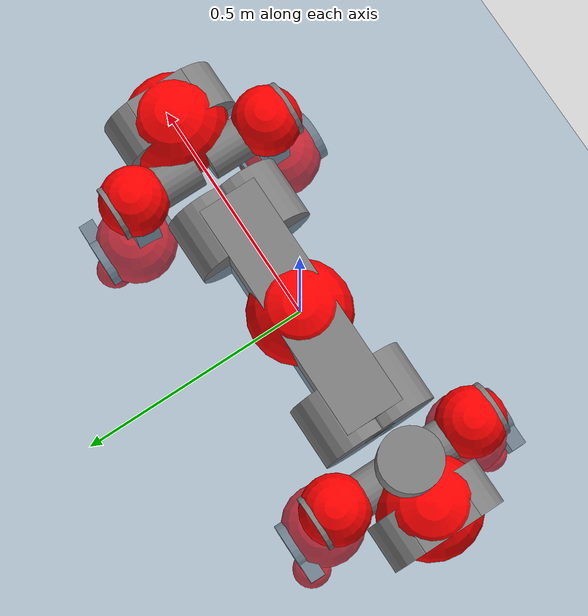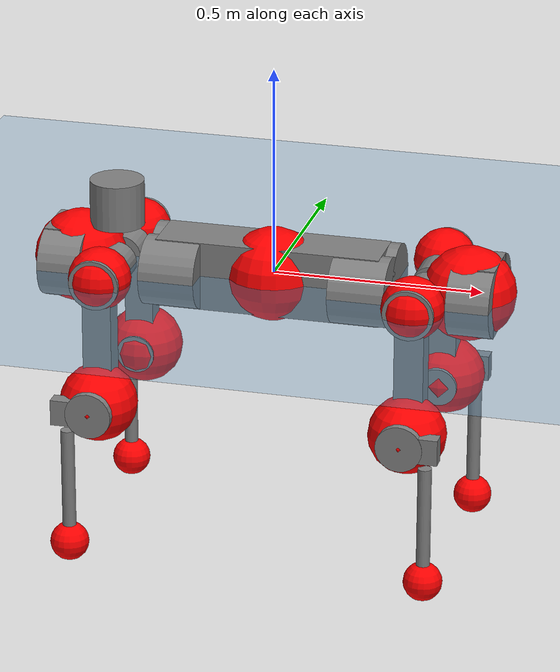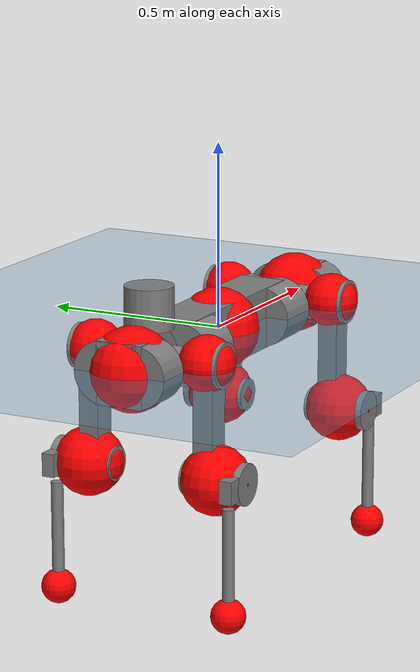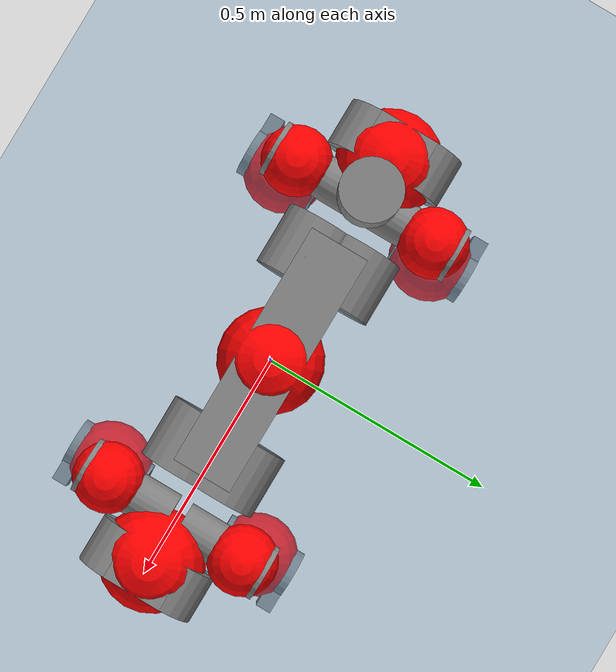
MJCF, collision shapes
<mujoco model="anymal_c">
  <compiler angle="radian" assetdir="assets" balanceinertia="true" inertiafromgeom="false"/>

  <option timestep="0.005" density="1.2" viscosity="2e-05"/>

  <size nkey="1"/>

  <visual>
    <quality shadowsize="8192"/>
    <map shadowclip="0.5"/>
  </visual>

  <default>
    <default class="/">
      <material specular="0" shininess="0.25"/>
      <geom contype="0" conaffinity="0" group="1" solref="-1000 -80"/>
      <site size="0.01 0.005 0.005" group="5"/>
      <general forcelimited="true" forcerange="-80 80" biastype="affine" gainprm="80" biasprm="0 -80 -2"/>
      <default class="anymal_c">
        <joint armature="0.01" damping="0.01" frictionloss="0.1"/>
        <default class="visual">
          <geom type="mesh" group="2"/>
          <default class="visual_zflip"/>
        </default>
        <default class="collision">
          <geom type="cylinder" group="3"/>
          <default class="foot">
            <geom size="0.03 0 0" type="sphere" condim="6" priority="1" friction="0.8 0.02 0.01" solimp="0.015 1 0.03"/>
          </default>
        </default>
      </default>
      <default class="reward_collision_sphere">
        <geom group="5" rgba="1 0 0 1"/>
      </default>
    </default>
  </default>

  <asset>
    <texture type="skybox" colorspace="auto" name="//unnamed_texture_0" builtin="gradient" rgb1="0.95 0.95 0.95" rgb2="0.95 0.95 0.95" width="100" height="600"/>
    <texture type="2d" colorspace="auto" name="texplane" builtin="checker" rgb1="0.345 0.575 0.748" rgb2="0.345 0.575 0.748" markrgb="1 1 1" width="512" height="512"/>
    <texture type="2d" colorspace="linear" name="base" file="base.png"/>
    <texture type="2d" colorspace="linear" name="top_shell" file="top_shell.png"/>
    <texture type="2d" colorspace="linear" name="bottom_shell" file="bottom_shell.png"/>
    <texture type="2d" colorspace="linear" name="remote" file="remote.png"/>
    <texture type="2d" colorspace="linear" name="hatch" file="hatch.png"/>
    <texture type="2d" colorspace="linear" name="handle" file="handle.png"/>
    <texture type="2d" colorspace="linear" name="face" file="face.png"/>
    <texture type="2d" colorspace="linear" name="battery" file="battery.png"/>
    <texture type="2d" colorspace="linear" name="lidar_cage" file="lidar_cage.png"/>
    <texture type="2d" colorspace="linear" name="depth_camera" file="depth_camera.png"/>
    <texture type="2d" colorspace="linear" name="wide_angle_camera" file="wide_angle_camera.png"/>
    <texture type="2d" colorspace="linear" name="lidar" file="lidar.png"/>
    <texture type="2d" colorspace="linear" name="drive" file="drive.png"/>
    <texture type="2d" colorspace="linear" name="hip_l" file="hip_l.png"/>
    <texture type="2d" colorspace="linear" name="shank_l" file="shank_l.png"/>
    <texture type="2d" colorspace="linear" name="foot" file="foot.png"/>
    <texture type="2d" colorspace="linear" name="thigh" file="thigh.png"/>
    <texture type="2d" colorspace="linear" name="shank_r" file="shank_r.png"/>
    <texture type="2d" colorspace="linear" name="hip_r" file="hip_r.png"/>
    <material name="MatPlane" class="/" texture="texplane" texuniform="true" texrepeat="2 2" specular="0.9" shininess="0.5"/>
    <material name="black_plastic" class="/" rgba="0.007 0.007 0.007 1"/>
    <material name="green" class="/" rgba="0.052 0.178 0.033 1"/>
    <material name="red" class="/" rgba="0.178 0.006 0.005 1"/>
    <material name="yellow" class="/" rgba="0.178 0.119 0.006 1"/>
    <material name="lwl" class="/" rgba="0.8 0.8 0.8 1"/>
    <material name="base" class="/" texture="base"/>
    <material name="top_shell" class="/" texture="top_shell"/>
    <material name="bottom_shell" class="/" texture="bottom_shell"/>
    <material name="hip_l" class="/" texture="hip_l"/>
    <material name="thigh" class="/" texture="thigh"/>
    <material name="shank_l" class="/" texture="shank_l"/>
    <material name="foot" class="/" texture="foot"/>
    <material name="hip_r" class="/" texture="hip_r"/>
    <material name="shank" class="/" texture="shank_r"/>
    <material name="hatch" class="/" texture="hatch"/>
    <material name="remote" class="/" texture="remote"/>
    <material name="handle" class="/" texture="handle"/>
    <material name="face" class="/" texture="face"/>
    <material name="depth_camera" class="/" texture="depth_camera"/>
    <material name="wide_angle_camera" class="/" texture="wide_angle_camera"/>
    <material name="battery" class="/" texture="battery"/>
    <material name="lidar_cage" class="/" texture="lidar_cage"/>
    <material name="lidar" class="/" texture="lidar"/>
    <material name="drive" class="/" texture="drive"/>
    <mesh name="base_0" class="/" file="base_0.obj"/>
    <mesh name="base_1" class="/" file="base_1.obj"/>
    <mesh name="base_2" class="/" file="base_2.obj"/>
    <mesh name="base_3" class="/" file="base_3.obj"/>
    <mesh name="base_4" class="/" file="base_4.obj"/>
    <mesh name="base_5" class="/" file="base_5.obj"/>
    <mesh name="top_shell" class="/" file="top_shell.obj"/>
    <mesh name="bottom_shell" class="/" file="bottom_shell.obj"/>
    <mesh name="remote" class="/" file="remote.obj"/>
    <mesh name="handle" class="/" file="handle.obj"/>
    <mesh name="face" class="/" file="face.obj"/>
    <mesh name="wide_angle_camera" class="/" file="wide_angle_camera.obj"/>
    <mesh name="depth_camera" class="/" file="depth_camera.obj"/>
    <mesh name="battery" class="/" file="battery.obj"/>
    <mesh name="lidar_cage" class="/" file="lidar_cage.obj"/>
    <mesh name="lidar" class="/" file="lidar.obj"/>
    <mesh name="drive" class="/" file="drive.obj"/>
    <mesh name="hip_l" class="/" file="hip_l.obj"/>
    <mesh name="thigh" class="/" file="thigh.obj"/>
    <mesh name="shank_l" class="/" file="shank_l.obj"/>
    <mesh name="foot" class="/" file="foot.obj"/>
    <mesh name="hip_r" class="/" file="hip_r.obj"/>
    <mesh name="hatch" class="/" file="hatch.obj"/>
    <mesh name="shank_r" class="/" file="shank_r.obj"/>
  </asset>

  <worldbody>
    <geom name="floor" class="/" size="100 100 0.125" type="plane" group="0" material="MatPlane"/>
    <light name="toplight_shadow" class="/" pos="0 0 5" dir="0.0990148 0.0990148 -0.990148" type="directional" ambient="0.04 0.04 0.04" diffuse="0.55 0.55 0.55" specular="0.12 0.12 0.12"/>
    <light name="toplight_fill" class="/" pos="0 0 5" dir="0.0990148 0.0990148 -0.990148" type="directional" castshadow="false" ambient="0.04 0.04 0.04" diffuse="0.3 0.3 0.3" specular="0.08 0.08 0.08"/>
    <body name="trunk" childclass="anymal_c" pos="-0.000994143 -0.00017156 -0.00276592" quat="1 -0.000347918 0.000164383 -0.000167228">
      <inertial pos="-4.28887e-05 -0.0020099 0.0545533" quat="0.497397 0.496354 0.500484 0.505711" mass="15.5144" diaginertia="0.834171 0.0783715 0.319424"/>
      <joint name="//unnamed_joint_0" type="free" armature="0" damping="0" frictionloss="0"/>
      <geom name="//unnamed_geom_1" class="visual" material="green" mesh="base_0"/>
      <geom name="//unnamed_geom_2" class="visual" material="yellow" mesh="base_1"/>
      <geom name="//unnamed_geom_3" class="visual" material="red" mesh="base_2"/>
      <geom name="//unnamed_geom_4" class="visual" material="black_plastic" mesh="base_3"/>
      <geom name="//unnamed_geom_5" class="visual" material="lwl" mesh="base_4"/>
      <geom name="//unnamed_geom_6" class="visual" material="base" mesh="base_5"/>
      <geom name="trunk_1" class="collision" size="0.268016 0.0646934 0.0831773" type="box"/>
      <geom name="trunk_2" class="collision" size="0.0831773 0.0670039" pos="0.226892 0.0459431 0" quat="0.707107 0 0.707107 0"/>
      <geom name="trunk_3" class="collision" size="0.0831773 0.0670039" pos="-0.226892 0.0459431 0" quat="0.707107 0 0.707107 0"/>
      <geom name="trunk_4" class="collision" size="0.0831773 0.0670039" pos="0.226892 -0.0459431 0" quat="0.707107 0 0.707107 0"/>
      <geom name="trunk_5" class="collision" size="0.0831773 0.0670039" pos="-0.226892 -0.0459431 0" quat="0.707107 0 0.707107 0"/>
      <geom name="//unnamed_geom_12" class="visual" material="top_shell" mesh="top_shell"/>
      <geom name="//unnamed_geom_13" class="visual" material="bottom_shell" mesh="bottom_shell"/>
      <geom name="//unnamed_geom_14" class="visual" material="remote" mesh="remote"/>
      <geom name="//unnamed_geom_15" class="visual" material="handle" mesh="handle"/>
      <geom name="//unnamed_geom_16" class="visual" pos="0.432398 0 0" quat="1 0 0 0" material="face" mesh="face"/>
      <geom name="trunk_6" class="collision" size="0.0508306 0.0646934 0.0831773" pos="0.489773 0 0" type="box"/>
      <geom name="//unnamed_geom_18" class="collision" size="0.0831773 0.0508306" pos="0.489773 0.0459431 0" quat="0.707107 0 0.707107 0"/>
      <geom name="//unnamed_geom_19" class="collision" size="0.0831773 0.0508306" pos="0.489773 -0.0459431 0" quat="0.707107 0 0.707107 0"/>
      <geom name="//unnamed_geom_20" class="visual" pos="0.481585 0 -0.0315607" quat="0.965926 0 0.258819 0" material="depth_camera" mesh="depth_camera"/>
      <geom name="//unnamed_geom_21" class="visual" pos="0.535151 0 0.0160638" material="wide_angle_camera" mesh="wide_angle_camera"/>
      <geom name="//unnamed_geom_22" class="visual_zflip" pos="-0.432398 0 0" quat="0 0 0 1" material="face" mesh="face"/>
      <geom name="trunk_7" class="collision" size="0.0508306 0.0646934 0.0831773" pos="-0.489773 0 0" quat="0 0 0 1" type="box"/>
      <geom name="//unnamed_geom_24" class="collision" size="0.0831773 0.0508306" pos="-0.489773 -0.0459431 0" quat="0 -0.707107 0 0.707107"/>
      <geom name="//unnamed_geom_25" class="collision" size="0.0831773 0.0508306" pos="-0.489773 0.0459431 0" quat="0 -0.707107 0 0.707107"/>
      <geom name="//unnamed_geom_26" class="visual" pos="-0.481585 0 -0.0315607" quat="0 -0.258819 0 0.965926" material="depth_camera" mesh="depth_camera"/>
      <geom name="//unnamed_geom_27" class="visual_zflip" pos="-0.535151 0 0.0160638" quat="0 0 0 1" material="wide_angle_camera" mesh="wide_angle_camera"/>
      <geom name="//unnamed_geom_28" class="visual" material="battery" mesh="battery"/>
      <geom name="//unnamed_geom_29" class="visual" pos="0 0.045108 0.0309454" quat="0.683013 -0.183013 0.183013 0.683013" material="depth_camera" mesh="depth_camera"/>
      <geom name="//unnamed_geom_30" class="visual" pos="0 -0.045108 0.0309454" quat="0.683013 0.183013 0.183013 -0.683013" material="depth_camera" mesh="depth_camera"/>
      <geom name="//unnamed_geom_31" class="visual" pos="-0.379717 0 0.0788704" quat="1 0 0 0" material="lidar_cage" mesh="lidar_cage"/>
      <geom name="trunk_8" class="collision" size="0.0646934 0.0554515" pos="-0.379717 0 0.143254"/>
      <geom name="//unnamed_geom_33" class="visual" pos="-0.379717 -0.000151983 0.15259" quat="0.707107 0 0 -0.707107" material="lidar" mesh="lidar"/>
      <geom name="//unnamed_geom_34" class="visual" pos="0.31285 0.0684064 -7.18873e-09" quat="0.258819 0.965926 0 0" material="drive" mesh="drive"/>
      <geom name="//unnamed_geom_35" class="visual" pos="0.31285 -0.0684064 7.18873e-09" quat="0.258819 -0.965926 0 0" material="drive" mesh="drive"/>
      <geom name="//unnamed_geom_36" class="visual" pos="-0.31285 0.0684064 7.18873e-09" quat="0 0 0.965926 -0.258819" material="drive" mesh="drive"/>
      <geom name="//unnamed_geom_37" class="visual" pos="-0.31285 -0.0684064 -7.18873e-09" quat="0 0 -0.965926 -0.258819" material="drive" mesh="drive"/>
      <geom name="//unnamed_geom_38" class="visual" pos="0.121009 0 0.0783338" quat="1 0 0 0" material="hatch" mesh="hatch"/>
      <geom name="//unnamed_geom_39" class="reward_collision_sphere" size="0.110903"/>
      <geom name="//unnamed_geom_40" class="reward_collision_sphere" size="0.110903" pos="0.469431 0 0"/>
      <geom name="//unnamed_geom_41" class="reward_collision_sphere" size="0.110903" pos="-0.469431 0 0"/>
      <site name="imu" pos="0.25564 0.00821665 0.0593849" size="0.00924192"/>
      <camera name="track" pos="0 -1.31266 0" quat="0.707107 0.707107 0 0" mode="trackcom"/>
      <camera name="ego_camera" pos="0.469431 0 -0.0429226" quat="-0.5 -0.5 0.5 0.5"/>
      <body name="LF_HIP" pos="0.313091 0.067928 -0.000400933" quat="0.258324 0.966057 -0.000688776 -0.00115079">
        <inertial pos="0.0609613 -0.0123863 -0.00752618" quat="-0.12203 0.702545 -0.130533 0.68884" mass="2.17281" diaginertia="0.00717975 0.000604842 0.00483105"/>
        <joint name="LF_HAA" pos="0 0 0" axis="0.999884 -0.00833106 0.0127408" range="-0.69881 0.542849" armature="0.00986599" damping="0.00585911" frictionloss="0.0922636"/>
        <geom name="//unnamed_geom_42" class="visual" pos="0 -0.000422881 6.94578e-05" quat="0.258819 -0.965926 0 0" material="hip_l" mesh="hip_l"/>
        <geom name="//unnamed_geom_43" class="visual" pos="0.0624865 -0.0707702 -0.0439416" quat="0.183013 -0.683013 0.683013 0.183013" material="drive" mesh="drive"/>
        <geom name="//unnamed_geom_44" class="collision" size="0.0462096 0.0646934" pos="0.0624865 -0.00784958 -0.00740952" quat="-0.353553 -0.612372 0.612372 -0.353553"/>
        <body name="LF_THIGH" pos="0.0633106 -0.0486295 -0.0447517" quat="0.182722 -0.683566 0.682676 0.182496">
          <inertial pos="0.0349757 4.80037e-05 -0.261919" quat="0.992835 -0.00998345 -0.0808574 0.0874158" mass="2.47813" diaginertia="0.0361297 0.0035903 0.00588456"/>
          <joint name="LF_HFE" pos="0 0 0" axis="0.999976 0.00520097 0.00450905" stiffness="0.0041342" range="-3.16806 3.13968" armature="0.00915034" damping="0.000616219" frictionloss="0.0834606"/>
          <geom name="//unnamed_geom_45" class="visual" pos="0.00769677 1.21283e-05 0" quat="0.707107 0 0 -0.707107" material="thigh" mesh="thigh"/>
          <geom name="//unnamed_geom_46" class="collision" size="0.0600725 0.0369677" pos="0.0417272 0 0" quat="0.5 0.5 -0.5 -0.5"/>
          <geom name="//unnamed_geom_47" class="collision" size="0.0346572 0.0277258 0.130601" pos="0.0312954 0 -0.151639" quat="0.707107 0 0 -0.707107" type="box"/>
          <geom name="//unnamed_geom_48" class="visual" pos="0.104631 0 -0.305824" quat="1 0 0 0" material="drive" mesh="drive"/>
          <geom name="//unnamed_geom_49" class="collision" size="0.0462096 0.0646934" pos="0.0316083 0 -0.305824" quat="0.707107 0 0.707107 0"/>
          <geom name="//unnamed_geom_50" class="reward_collision_sphere" size="0.0739354" pos="0.0260795 0 0"/>
          <body name="LF_SHANK" pos="0.10756 -0.00271279 -0.306912" quat="0.999999 0.00101864 0.000197846 -0.000663166">
            <inertial pos="0.0051698 -0.0403717 -0.0873522" quat="0.99245 -0.120095 0.00107972 -0.0248876" mass="0.453057" diaginertia="0.0121515 0.00112149 0.00152839"/>
            <joint name="LF_KFE" pos="0 0 0" axis="0.999971 0.00117773 -0.00750409" range="-3.19649 3.1793" armature="0.0104847" damping="0" frictionloss="0.105499"/>
            <geom name="//unnamed_geom_51" class="visual" pos="0.00250975 0.0133821 0" quat="0.707107 0 0 -0.707107" material="shank_l" mesh="shank_l"/>
            <geom name="LF_kfe_act" class="collision" size="0.0554515 0.0184838" pos="0.0208636 0 0" quat="0.5 0.5 -0.5 -0.5"/>
            <geom name="//unnamed_geom_53" class="collision" size="0.0531401 0.0311915 0.0175596" pos="0.0208636 -0.0377384 0" quat="0.5 0.5 -0.5 -0.5" type="box"/>
            <geom name="//unnamed_geom_54" class="visual" pos="0.0136129 -0.0534118 -0.362664" quat="0.382683 0 0 -0.92388" material="foot" mesh="foot"/>
            <geom name="LF_calf" class="collision" size="0.0161734 0.130544" pos="0.0136135 -0.0577243 -0.181332" quat="0.707107 0 0 -0.707107"/>
            <geom name="LF_foot" class="foot" size="0.0260319" pos="0.0136135 -0.0577243 -0.33852" quat="0.707107 0 0 -0.707107"/>
            <geom name="//unnamed_geom_57" class="reward_collision_sphere" size="0.0924192" pos="-0.052159 0 0"/>
            <geom name="//unnamed_geom_58" class="reward_collision_sphere" size="0.0462096" pos="0.0136135 -0.0577243 -0.33852"/>
            <site name="LF_foot" class="foot" pos="0.0136135 -0.0577243 -0.33852" quat="0.707107 0 0 -0.707107" size="0.00924192"/>
          </body>
        </body>
      </body>
      <body name="RF_HIP" pos="0.310644 -0.0680354 -0.00164117" quat="0.258725 -0.965951 0.000378808 0.000766089">
        <inertial pos="0.0612223 0.0116206 -0.0100944" quat="0.135262 0.67906 0.128011 0.710067" mass="2.2474" diaginertia="0.00726549 0.000642208 0.00483071"/>
        <joint name="RF_HAA" pos="0 0 0" axis="0.999927 0.00443885 -0.0112675" range="-0.525898 0.716857" armature="0.00838366" damping="0.0094837" frictionloss="0.083715"/>
        <geom name="//unnamed_geom_59" class="visual" pos="0 0.000422877 6.94576e-05" quat="0.258819 0.965926 0 0" material="hip_r" mesh="hip_r"/>
        <geom name="//unnamed_geom_60" class="visual" pos="0.0624864 0.0707702 -0.0439416" quat="0.183013 0.683013 0.683013 -0.183013" material="drive" mesh="drive"/>
        <geom name="//unnamed_geom_61" class="collision" size="0.0462096 0.0646934" pos="0.0624865 0.00784958 -0.00740952" quat="-0.353553 0.612372 0.612372 0.353553"/>
        <body name="RF_THIGH" pos="0.0605356 0.0489939 -0.0477816" quat="0.183255 0.68264 0.683276 -0.183177">
          <inertial pos="0.0322336 -0.000411428 -0.262382" quat="0.99248 0.00115345 -0.0881212 0.0849494" mass="2.30566" diaginertia="0.035734 0.00364872 0.00594626"/>
          <joint name="RF_HFE" pos="0 0 0" axis="0.999973 0.00659519 -0.00329077" stiffness="0.00742362" range="-3.12497 3.19734" armature="0.00947123" damping="0" frictionloss="0.0930553"/>
          <geom name="//unnamed_geom_62" class="visual" pos="0.00769677 1.21283e-05 0" quat="0.707107 0 0 -0.707107" material="thigh" mesh="thigh"/>
          <geom name="//unnamed_geom_63" class="collision" size="0.0600725 0.0369677" pos="0.0417272 0 0" quat="0.5 0.5 0.5 0.5"/>
          <geom name="//unnamed_geom_64" class="collision" size="0.0346572 0.0277258 0.130601" pos="0.0312954 0 -0.151639" quat="0.707107 0 0 0.707107" type="box"/>
          <geom name="//unnamed_geom_65" class="visual" pos="0.104631 0 -0.305824" quat="1 0 0 0" material="drive" mesh="drive"/>
          <geom name="//unnamed_geom_66" class="collision" size="0.0462096 0.0646934" pos="0.0316083 0 -0.305824" quat="0.707107 0 0.707107 0"/>
          <geom name="//unnamed_geom_67" class="reward_collision_sphere" size="0.0739354" pos="0.0260795 0 0"/>
          <body name="RF_SHANK" pos="0.105823 -0.00118456 -0.303269" quat="1 -9.99506e-05 -0.000510267 -0.000313248">
            <inertial pos="0.00556772 0.0412151 -0.0848622" quat="0.991964 0.1232 -0.0130809 0.0256554" mass="0.467505" diaginertia="0.0124268 0.00109294 0.00157566"/>
            <joint name="RF_KFE" pos="0 0 0" axis="0.99991 -0.0128556 -0.00377369" range="-3.19006 3.19272" armature="0.00853041" damping="0.00450529" frictionloss="0.0871376"/>
            <geom name="//unnamed_geom_68" class="visual" pos="0.00250974 -0.0133821 0" quat="0.707107 0 0 0.707107" material="shank" mesh="shank_r"/>
            <geom name="RF_kfe_act" class="collision" size="0.0554515 0.0184838" pos="0.0208636 0 0" quat="0.5 0.5 0.5 0.5"/>
            <geom name="//unnamed_geom_70" class="collision" size="0.0531401 0.0311915 0.0175596" pos="0.0208636 0.0377384 0" quat="0.5 0.5 0.5 0.5" type="box"/>
            <geom name="//unnamed_geom_71" class="visual" pos="0.0136141 0.0534118 -0.362664" quat="0.382683 0 0 0.92388" material="foot" mesh="foot"/>
            <geom name="RF_calf" class="collision" size="0.0161734 0.130544" pos="0.0136135 0.0577243 -0.181332" quat="0.707107 0 0 0.707107"/>
            <geom name="RF_foot" class="foot" size="0.0279525" pos="0.0136135 0.0577243 -0.33852" quat="0.707107 0 0 0.707107"/>
            <geom name="//unnamed_geom_74" class="reward_collision_sphere" size="0.0924192" pos="-0.052159 0 0"/>
            <geom name="//unnamed_geom_75" class="reward_collision_sphere" size="0.0462096" pos="0.0136135 0.0577243 -0.33852"/>
            <site name="RF_foot" class="foot" pos="0.0136135 0.0577243 -0.33852" quat="0.707107 0 0 0.707107" size="0.00924192"/>
          </body>
        </body>
      </body>
      <body name="LH_HIP" pos="-0.313611 0.0708316 -0.000987166" quat="-0.000356745 -0.000395698 0.965985 -0.258598">
        <inertial pos="0.0617373 0.011548 -0.00998446" quat="0.13396 0.67078 0.13752 0.716378" mass="2.20561" diaginertia="0.00688103 0.000590766 0.00444365"/>
        <joint name="LH_HAA" pos="0 0 0" axis="0.999935 -0.00208317 0.0111755" range="-0.455339 0.719361" armature="0.00830385" damping="0" frictionloss="0.0963772"/>
        <geom name="//unnamed_geom_76" class="visual" pos="0 0.000422877 6.94576e-05" quat="-0.258819 -0.965926 0 0" material="hip_r" mesh="hip_r"/>
        <geom name="//unnamed_geom_77" class="visual" pos="0.0624864 0.0707702 -0.0439416" quat="0.183013 0.683013 0.683013 -0.183013" material="drive" mesh="drive"/>
        <geom name="//unnamed_geom_78" class="collision" size="0.0462096 0.0646934" pos="0.0624865 0.00784958 -0.00740952" quat="-0.353553 0.612372 0.612372 0.353553"/>
        <body name="LH_THIGH" pos="0.0590998 0.0472344 -0.0463243" quat="0.182888 0.683163 0.682897 -0.183006">
          <inertial pos="0.032354 0.00230096 -0.263056" quat="0.99316 -0.0040975 -0.0756179 0.0888756" mass="2.43484" diaginertia="0.0376328 0.00352279 0.00607822"/>
          <joint name="LH_HFE" pos="0 0 0" axis="0.999955 -0.00312471 0.00895599" stiffness="0.00998079" range="-3.13413 3.15693" armature="0.00798072" damping="0" frictionloss="0.101149"/>
          <geom name="//unnamed_geom_79" class="visual" pos="0.00769677 1.21283e-05 0" quat="0.707107 0 0 -0.707107" material="thigh" mesh="thigh"/>
          <geom name="//unnamed_geom_80" class="collision" size="0.0600725 0.0369677" pos="0.0417272 0 0" quat="0.5 0.5 -0.5 -0.5"/>
          <geom name="//unnamed_geom_81" class="collision" size="0.0346572 0.0277258 0.130601" pos="0.0312954 0 -0.151639" quat="0.707107 0 0 -0.707107" type="box"/>
          <geom name="//unnamed_geom_82" class="visual" pos="0.104631 0 -0.305824" quat="1 0 0 0" material="drive" mesh="drive"/>
          <geom name="//unnamed_geom_83" class="collision" size="0.0462096 0.0646934" pos="0.0316083 0 -0.305824" quat="0.707107 0 0.707107 0"/>
          <geom name="//unnamed_geom_84" class="reward_collision_sphere" size="0.0739354" pos="0.0260795 0 0"/>
          <body name="LH_SHANK" pos="0.101527 -0.000777271 -0.308613" quat="0.999999 0.000400989 0.00117778 -0.000460002">
            <inertial pos="0.00562275 0.0402603 -0.086512" quat="0.993028 0.114951 -0.0012482 0.0260778" mass="0.466282" diaginertia="0.0124695 0.00112155 0.00158765"/>
            <joint name="LH_KFE" pos="0 0 0" axis="0.999825 -0.00180675 0.0186344" range="-3.15673 3.14354" armature="0.00816816" damping="0.01106" frictionloss="0.105473"/>
            <geom name="//unnamed_geom_85" class="visual" pos="0.00250974 -0.0133821 0" quat="-0.707107 0 0 -0.707107" material="shank" mesh="shank_r"/>
            <geom name="LH_kfe_act" class="collision" size="0.0554515 0.0184838" pos="0.0208636 0 0" quat="0.5 0.5 -0.5 -0.5"/>
            <geom name="//unnamed_geom_87" class="collision" size="0.0531401 0.0311915 0.0175596" pos="0.0208636 0.0377384 0" quat="0.5 0.5 -0.5 -0.5" type="box"/>
            <geom name="//unnamed_geom_88" class="visual" pos="0.0136141 0.0534118 -0.362664" quat="-0.382683 0 0 -0.92388" material="foot" mesh="foot"/>
            <geom name="LH_calf" class="collision" size="0.0161734 0.130544" pos="0.0136135 0.0577243 -0.181332" quat="0.707107 0 0 -0.707107"/>
            <geom name="LH_foot" class="foot" size="0.0291731" pos="0.0136135 0.0577243 -0.33852" quat="0.707107 0 0 -0.707107"/>
            <geom name="//unnamed_geom_91" class="reward_collision_sphere" size="0.0924192" pos="-0.052159 0 0"/>
            <geom name="//unnamed_geom_92" class="reward_collision_sphere" size="0.0462096" pos="0.0136135 0.0577243 -0.33852"/>
            <site name="LH_foot" class="foot" pos="0.0136135 0.0577243 -0.33852" quat="0.707107 0 0 -0.707107" size="0.00924192"/>
          </body>
        </body>
      </body>
      <body name="RH_HIP" pos="-0.313388 -0.0705403 -0.00143348" quat="-4.76888e-05 -0.00100669 -0.966036 -0.258405">
        <inertial pos="0.0575378 -0.0100855 -0.00698935" quat="-0.129361 0.713373 -0.13573 0.675235" mass="2.12357" diaginertia="0.00703349 0.000579173 0.00446206"/>
        <joint name="RH_HAA" pos="0 0 0" axis="1 0.000242174 7.57164e-05" range="-0.767216 0.510706" armature="0.00897423" damping="0" frictionloss="0.0948139"/>
        <geom name="//unnamed_geom_93" class="visual" pos="0 -0.000422881 6.94578e-05" quat="-0.258819 0.965926 0 0" material="hip_l" mesh="hip_l"/>
        <geom name="//unnamed_geom_94" class="visual" pos="0.0624865 -0.0707702 -0.0439416" quat="-0.183013 0.683013 -0.683013 -0.183013" material="drive" mesh="drive"/>
        <geom name="//unnamed_geom_95" class="collision" size="0.0462096 0.0646934" pos="0.0624865 -0.00784958 -0.00740952" quat="0.353553 0.612372 -0.612372 0.353553"/>
        <body name="RH_THIGH" pos="0.0612991 -0.0503704 -0.0444888" quat="-0.183233 0.683148 -0.682905 -0.182688">
          <inertial pos="0.0352322 -0.000795409 -0.263674" quat="0.993167 -0.00538913 -0.080794 0.0840372" mass="2.37974" diaginertia="0.0361735 0.00358826 0.00595635"/>
          <joint name="RH_HFE" pos="0 0 0" axis="0.99997 0.00392821 -0.00660493" range="-3.15951 3.15849" armature="0.00819536" damping="0" frictionloss="0.0947821"/>
          <geom name="//unnamed_geom_96" class="visual" pos="0.00769677 1.21283e-05 0" quat="0.707107 0 0 -0.707107" material="thigh" mesh="thigh"/>
          <geom name="//unnamed_geom_97" class="collision" size="0.0600725 0.0369677" pos="0.0417272 0 0" quat="0.5 0.5 0.5 0.5"/>
          <geom name="//unnamed_geom_98" class="collision" size="0.0346572 0.0277258 0.130601" pos="0.0312954 0 -0.151639" quat="0.707107 0 0 0.707107" type="box"/>
          <geom name="//unnamed_geom_99" class="visual" pos="0.104631 0 -0.305824" quat="1 0 0 0" material="drive" mesh="drive"/>
          <geom name="//unnamed_geom_100" class="collision" size="0.0462096 0.0646934" pos="0.0316083 0 -0.305824" quat="0.707107 0 0.707107 0"/>
          <geom name="//unnamed_geom_101" class="reward_collision_sphere" size="0.0739354" pos="0.0260795 0 0"/>
          <body name="RH_SHANK" pos="0.103198 0.000275939 -0.303536" quat="0.999999 0.000511123 0.00079508 0.00089129">
            <inertial pos="0.00376157 -0.0398509 -0.0875538" quat="0.993886 -0.108235 0.00563667 -0.0210526" mass="0.454025" diaginertia="0.0119606 0.00114275 0.00155604"/>
            <joint name="RH_KFE" pos="0 0 0" axis="0.999975 -0.00624991 0.00316361" stiffness="0.0090402" range="-3.11797 3.1034" armature="0.00875354" damping="0.0138479" frictionloss="0.0932046"/>
            <geom name="//unnamed_geom_102" class="visual" pos="0.00250975 0.0133821 0" quat="0.707107 0 0 -0.707107" material="shank_l" mesh="shank_l"/>
            <geom name="RH_kfe_act" class="collision" size="0.0554515 0.0184838" pos="0.0208636 0 0" quat="0.5 0.5 0.5 0.5"/>
            <geom name="//unnamed_geom_104" class="collision" size="0.0531401 0.0311915 0.0175596" pos="0.0208636 -0.0377384 0" quat="0.5 0.5 0.5 0.5" type="box"/>
            <geom name="//unnamed_geom_105" class="visual" pos="0.0136129 -0.0534118 -0.362664" quat="0.382683 0 0 -0.92388" material="foot" mesh="foot"/>
            <geom name="RH_calf" class="collision" size="0.0161734 0.130544" pos="0.0136135 -0.0577243 -0.181332" quat="0.707107 0 0 0.707107"/>
            <geom name="RH_foot" class="foot" size="0.0235881" pos="0.0136135 -0.0577243 -0.33852" quat="0.707107 0 0 0.707107"/>
            <geom name="//unnamed_geom_108" class="reward_collision_sphere" size="0.0924192" pos="-0.052159 0 0"/>
            <geom name="//unnamed_geom_109" class="reward_collision_sphere" size="0.0462096" pos="0.0136135 -0.0577243 -0.33852"/>
            <site name="RH_foot" class="foot" pos="0.0136135 -0.0577243 -0.33852" quat="0.707107 0 0 0.707107" size="0.00924192"/>
          </body>
        </body>
      </body>
    </body>
  </worldbody>

  <contact>
    <pair class="/" geom1="floor" geom2="LF_foot" name="//unnamed_contact_0"/>
    <pair class="/" geom1="floor" geom2="RF_foot" name="//unnamed_contact_1"/>
    <pair class="/" geom1="floor" geom2="LH_foot" name="//unnamed_contact_2"/>
    <pair class="/" geom1="floor" geom2="RH_foot" name="//unnamed_contact_3"/>
  </contact>

  <actuator>
    <general name="LF_HAA" class="/" joint="LF_HAA" forcerange="-76.1139 76.1139" gainprm="70.287" biasprm="0 -70.287 -1.73218"/>
    <general name="LF_HFE" class="/" joint="LF_HFE" forcerange="-66.3034 66.3034" gainprm="70.287" biasprm="0 -70.287 -1.73218"/>
    <general name="LF_KFE" class="/" joint="LF_KFE" forcerange="-73.0147 73.0147" gainprm="70.287" biasprm="0 -70.287 -1.73218"/>
    <general name="RF_HAA" class="/" joint="RF_HAA" forcerange="-67.034 67.034" gainprm="70.287" biasprm="0 -70.287 -1.73218"/>
    <general name="RF_HFE" class="/" joint="RF_HFE" forcerange="-83.4663 83.4663" gainprm="70.287" biasprm="0 -70.287 -1.73218"/>
    <general name="RF_KFE" class="/" joint="RF_KFE" forcerange="-68.3874 68.3874" gainprm="70.287" biasprm="0 -70.287 -1.73218"/>
    <general name="LH_HAA" class="/" joint="LH_HAA" forcerange="-74.2748 74.2748" gainprm="70.287" biasprm="0 -70.287 -1.73218"/>
    <general name="LH_HFE" class="/" joint="LH_HFE" forcerange="-68.6153 68.6153" gainprm="70.287" biasprm="0 -70.287 -1.73218"/>
    <general name="LH_KFE" class="/" joint="LH_KFE" forcerange="-74.8726 74.8726" gainprm="70.287" biasprm="0 -70.287 -1.73218"/>
    <general name="RH_HAA" class="/" joint="RH_HAA" forcerange="-70.5559 70.5559" gainprm="70.287" biasprm="0 -70.287 -1.73218"/>
    <general name="RH_HFE" class="/" joint="RH_HFE" forcerange="-71.1521 71.1521" gainprm="70.287" biasprm="0 -70.287 -1.73218"/>
    <general name="RH_KFE" class="/" joint="RH_KFE" forcerange="-80.6587 80.6587" gainprm="70.287" biasprm="0 -70.287 -1.73218"/>
  </actuator>

  <sensor>
    <gyro site="imu" name="imu_angular_velocity"/>
    <velocimeter site="imu" name="imu_linear_velocity"/>
    <framelinvel objtype="site" objname="LF_foot" name="LF_foot_global_linear_velocity"/>
    <framelinvel objtype="site" objname="RF_foot" name="RF_foot_global_linear_velocity"/>
    <framelinvel objtype="site" objname="LH_foot" name="LH_foot_global_linear_velocity"/>
    <framelinvel objtype="site" objname="RH_foot" name="RH_foot_global_linear_velocity"/>
  </sensor>

  <keyframe>
    <key name="home" qpos="0 0 0.55 1 0 0 0 0 0.4 -0.8 0 -0.4 0.8 0 -0.4 0.8 0 0.4 -0.8"/>
  </keyframe>
</mujoco>
